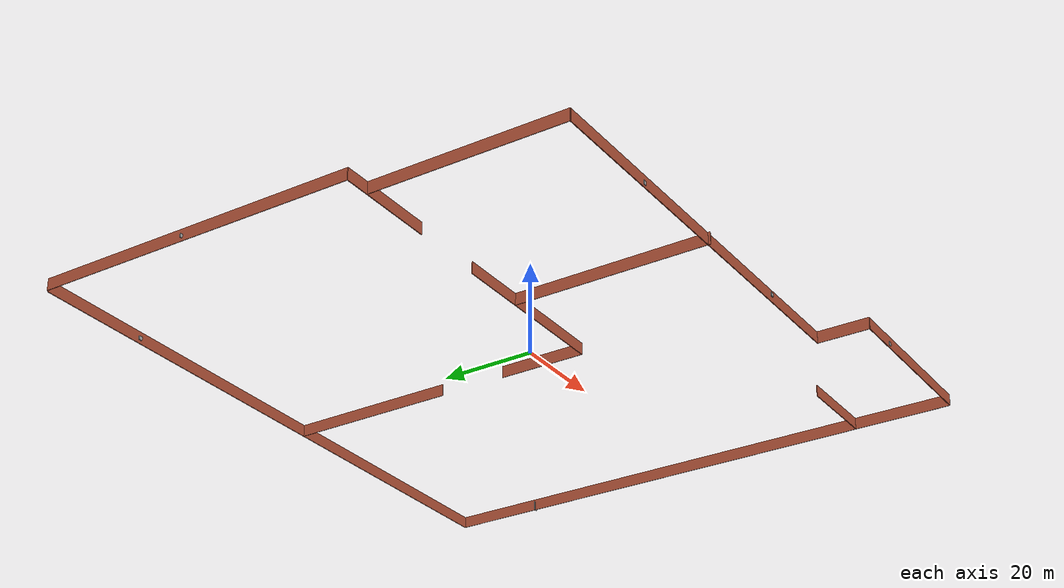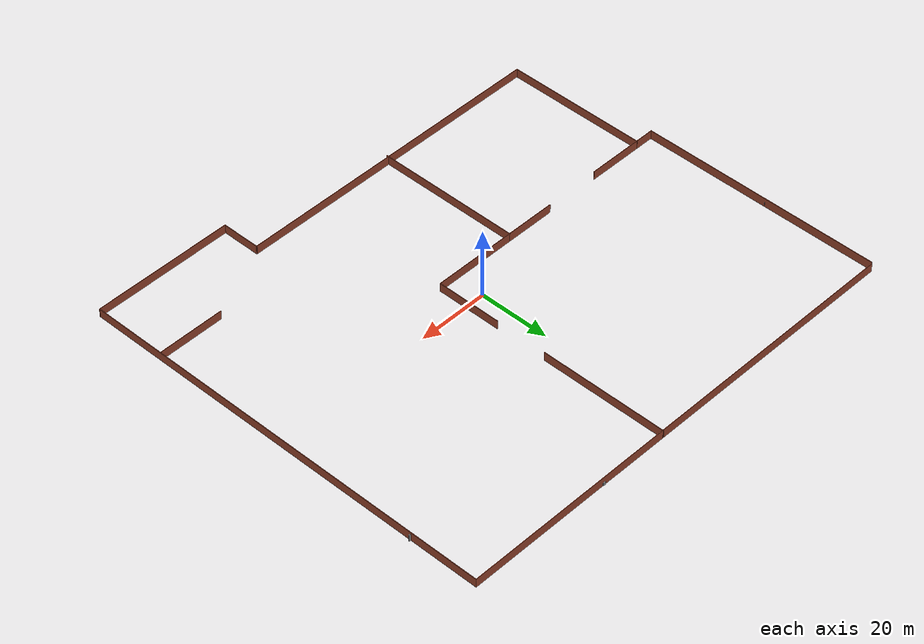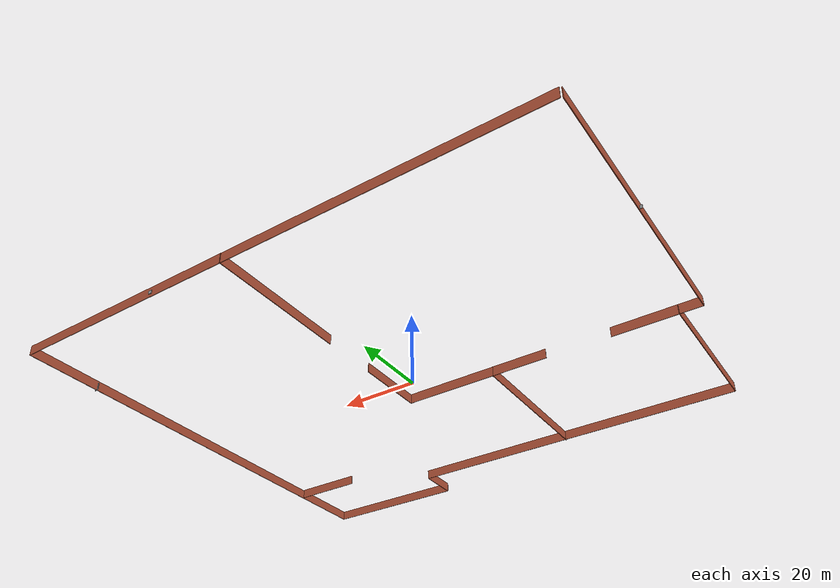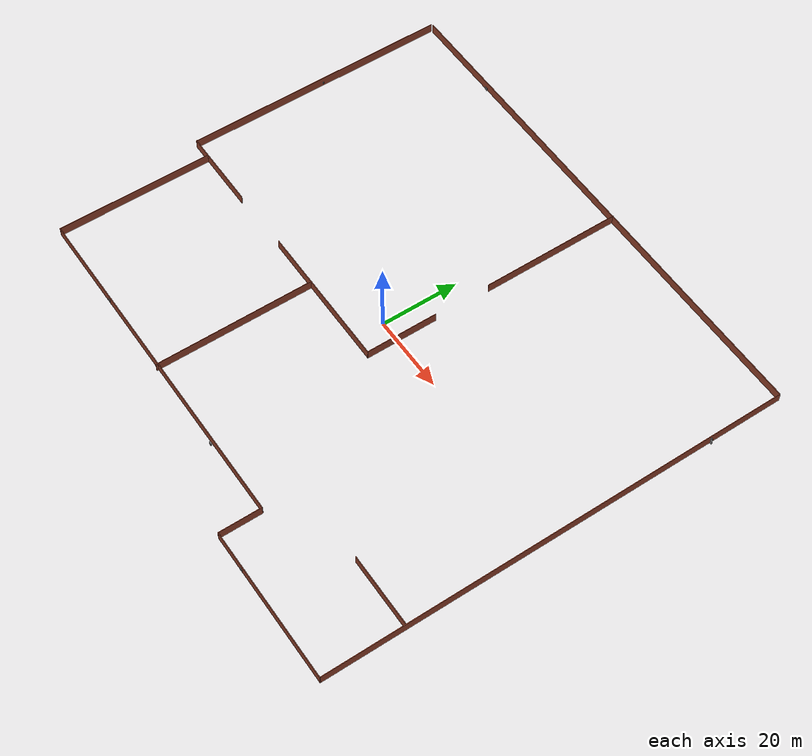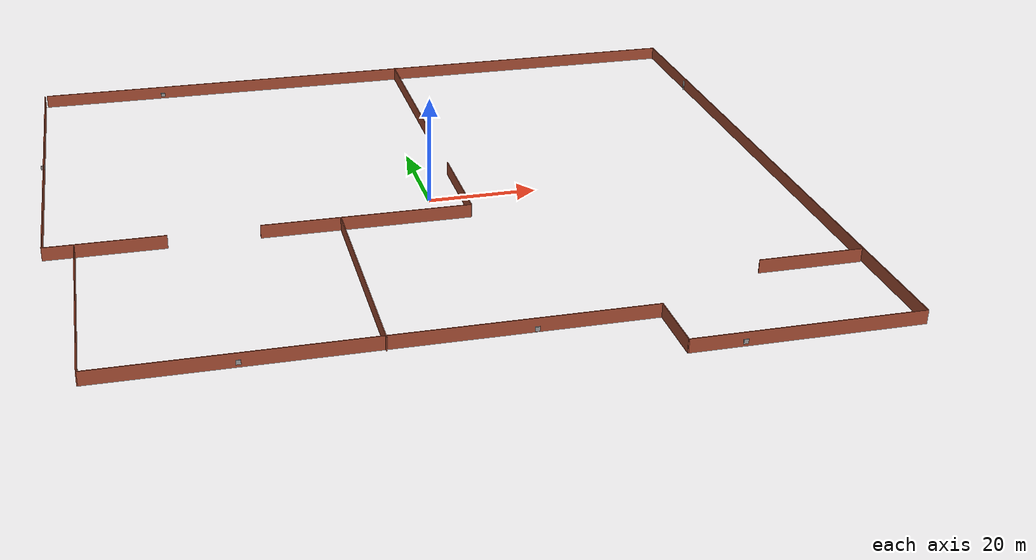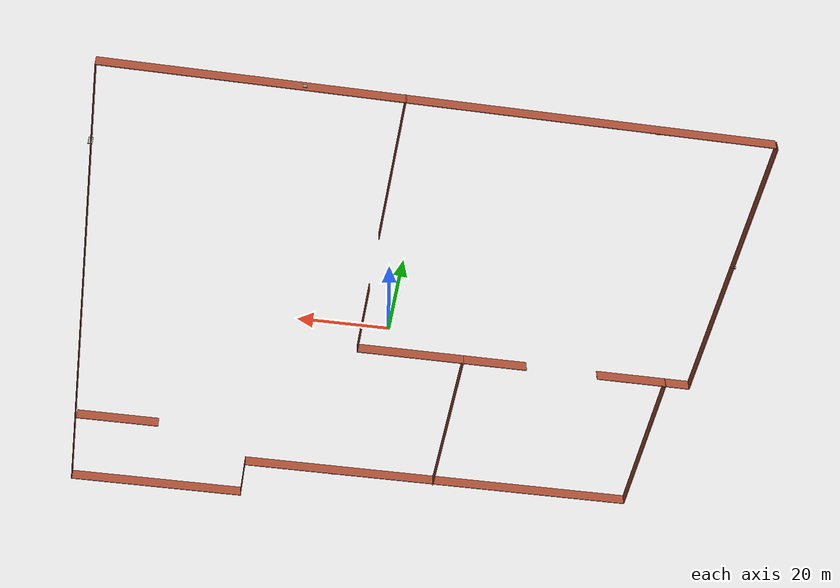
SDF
<?xml version='1.0'?>
<sdf version='1.6'>
  <model name='Untitled'>
    <pose frame=''>-1.43101 0.791929 0 0 -0 0</pose>
    <link name='Door_0'>
      <collision name='Door_0_Collision'>
        <geometry>
          <box>
            <size>0.9 0.17 2</size>
          </box>
        </geometry>
        <pose frame=''>0 0 1 0 -0 0</pose>
      </collision>
      <visual name='Door_0_Visual'>
        <pose frame=''>0 0 1 0 -0 0</pose>
        <geometry>
          <box>
            <size>0.9 0.17 2</size>
          </box>
        </geometry>
        <material>
          <script>
            <uri>file://media/materials/scripts/gazebo.material</uri>
            <name>Gazebo/Grey</name>
          </script>
        </material>
      </visual>
      <pose frame=''>67.6461 40.5561 0 0 -0 0</pose>
    </link>
    <link name='Wall_10'>
      <collision name='Wall_10_Collision'>
        <geometry>
          <box>
            <size>11 0.15 2.5</size>
          </box>
        </geometry>
        <pose frame=''>0 0 1.25 0 -0 0</pose>
      </collision>
      <visual name='Wall_10_Visual'>
        <pose frame=''>0 0 1.25 0 -0 0</pose>
        <geometry>
          <box>
            <size>11 0.15 2.5</size>
          </box>
        </geometry>
        <material>
          <script>
            <uri>file://media/materials/scripts/gazebo.material</uri>
            <name>Gazebo/Bricks</name>
          </script>
          <ambient>1 1 1 1</ambient>
        </material>
      </visual>
      <pose frame=''>27.925 -54.6711 0 0 -0 1.5708</pose>
    </link>
    <link name='Wall_11'>
      <collision name='Wall_11_Collision'>
        <geometry>
          <box>
            <size>90.25 0.15 2.5</size>
          </box>
        </geometry>
        <pose frame=''>0 0 1.25 0 -0 0</pose>
      </collision>
      <visual name='Wall_11_Visual'>
        <pose frame=''>0 0 1.25 0 -0 0</pose>
        <geometry>
          <box>
            <size>90.25 0.15 2.5</size>
          </box>
        </geometry>
        <material>
          <script>
            <uri>file://media/materials/scripts/gazebo.material</uri>
            <name>Gazebo/Bricks</name>
          </script>
          <ambient>1 1 1 1</ambient>
        </material>
      </visual>
      <pose frame=''>-17.125 -49.2461 0 0 -0 3.14159</pose>
    </link>
    <link name='Wall_12'>
      <collision name='Wall_12_Collision'>
        <geometry>
          <box>
            <size>40.25 0.15 2.5</size>
          </box>
        </geometry>
        <pose frame=''>0 0 1.25 0 -0 0</pose>
      </collision>
      <visual name='Wall_12_Visual'>
        <pose frame=''>0 0 1.25 0 -0 0</pose>
        <geometry>
          <box>
            <size>40.25 0.15 2.5</size>
          </box>
        </geometry>
        <material>
          <script>
            <uri>file://media/materials/scripts/gazebo.material</uri>
            <name>Gazebo/Bricks</name>
          </script>
          <ambient>1 1 1 1</ambient>
        </material>
      </visual>
      <pose frame=''>-62.175 -29.1961 0 0 -0 1.5708</pose>
    </link>
    <link name='Wall_13'>
      <collision name='Wall_13_Collision'>
        <geometry>
          <box>
            <size>5.5 0.15 2.5</size>
          </box>
        </geometry>
        <pose frame=''>0 0 1.25 0 -0 0</pose>
      </collision>
      <visual name='Wall_13_Visual'>
        <pose frame=''>0 0 1.25 0 -0 0</pose>
        <geometry>
          <box>
            <size>5.5 0.15 2.5</size>
          </box>
        </geometry>
        <material>
          <script>
            <uri>file://media/materials/scripts/gazebo.material</uri>
            <name>Gazebo/Bricks</name>
          </script>
          <ambient>1 1 1 1</ambient>
        </material>
      </visual>
      <pose frame=''>-64.85 -9.14614 0 0 -0 3.14159</pose>
    </link>
    <link name='Wall_14'>
      <collision name='Wall_14_Collision'>
        <geometry>
          <box>
            <size>69 0.15 2.5</size>
          </box>
        </geometry>
        <pose frame=''>0 0 1.25 0 -0 0</pose>
      </collision>
      <visual name='Wall_14_Visual'>
        <pose frame=''>0 0 1.25 0 -0 0</pose>
        <geometry>
          <box>
            <size>69 0.15 2.5</size>
          </box>
        </geometry>
        <material>
          <script>
            <uri>file://media/materials/scripts/gazebo.material</uri>
            <name>Gazebo/Bricks</name>
          </script>
          <ambient>1 1 1 1</ambient>
        </material>
      </visual>
      <pose frame=''>-67.525 25.2789 0 0 -0 1.5708</pose>
    </link>
    <link name='Wall_16'>
      <collision name='Wall_16_Collision'>
        <geometry>
          <box>
            <size>15.75 0.15 2.5</size>
          </box>
        </geometry>
        <pose frame=''>0 0 1.25 0 -0 0</pose>
      </collision>
      <visual name='Wall_16_Visual'>
        <pose frame=''>0 0 1.25 0 -0 0</pose>
        <geometry>
          <box>
            <size>15.75 0.15 2.5</size>
          </box>
        </geometry>
        <material>
          <script>
            <uri>file://media/materials/scripts/gazebo.material</uri>
            <name>Gazebo/Bricks</name>
          </script>
          <ambient>1 1 1 1</ambient>
        </material>
      </visual>
      <pose frame=''>-54.375 -9.14614 0 0 -0 0</pose>
    </link>
    <link name='Wall_18'>
      <collision name='Wall_18_Collision'>
        <geometry>
          <box>
            <size>41 0.15 2.5</size>
          </box>
        </geometry>
        <pose frame=''>0 0 1.25 0 -0 0</pose>
      </collision>
      <visual name='Wall_18_Visual'>
        <pose frame=''>0 0 1.25 0 -0 0</pose>
        <geometry>
          <box>
            <size>41 0.15 2.5</size>
          </box>
        </geometry>
        <material>
          <script>
            <uri>file://media/materials/scripts/gazebo.material</uri>
            <name>Gazebo/Bricks</name>
          </script>
          <ambient>1 1 1 1</ambient>
        </material>
      </visual>
      <pose frame=''>-16.3437 -29.2867 0 0 -0 1.5708</pose>
    </link>
    <link name='Wall_19'>
      <collision name='Wall_19_Collision'>
        <geometry>
          <box>
            <size>23.75 0.15 2.5</size>
          </box>
        </geometry>
        <pose frame=''>0 0 1.25 0 -0 0</pose>
      </collision>
      <visual name='Wall_19_Visual'>
        <pose frame=''>0 0 1.25 0 -0 0</pose>
        <geometry>
          <box>
            <size>23.75 0.15 2.5</size>
          </box>
        </geometry>
        <material>
          <script>
            <uri>file://media/materials/scripts/gazebo.material</uri>
            <name>Gazebo/Bricks</name>
          </script>
          <ambient>1 1 1 1</ambient>
        </material>
      </visual>
      <pose frame=''>-4.54371 -8.86166 0 0 -0 0</pose>
    </link>
    <link name='Wall_20'>
      <collision name='Wall_20_Collision'>
        <geometry>
          <box>
            <size>18.5 0.15 2.5</size>
          </box>
        </geometry>
        <pose frame=''>0 0 1.25 0 -0 0</pose>
      </collision>
      <visual name='Wall_20_Visual'>
        <pose frame=''>0 0 1.25 0 -0 0</pose>
        <geometry>
          <box>
            <size>18.5 0.15 2.5</size>
          </box>
        </geometry>
        <material>
          <script>
            <uri>file://media/materials/scripts/gazebo.material</uri>
            <name>Gazebo/Bricks</name>
          </script>
          <ambient>1 1 1 1</ambient>
        </material>
      </visual>
      <pose frame=''>7.25629 0.313338 0 0 -0 1.5708</pose>
    </link>
    <link name='Wall_22'>
      <collision name='Wall_22_Collision'>
        <geometry>
          <box>
            <size>14.25 0.15 2.5</size>
          </box>
        </geometry>
        <pose frame=''>0 0 1.25 0 -0 0</pose>
      </collision>
      <visual name='Wall_22_Visual'>
        <pose frame=''>0 0 1.25 0 -0 0</pose>
        <geometry>
          <box>
            <size>14.25 0.15 2.5</size>
          </box>
        </geometry>
        <material>
          <script>
            <uri>file://media/materials/scripts/gazebo.material</uri>
            <name>Gazebo/Bricks</name>
          </script>
          <ambient>1 1 1 1</ambient>
        </material>
      </visual>
      <pose frame=''>-23.3937 -8.86166 0 0 -0 3.14159</pose>
    </link>
    <link name='Wall_25'>
      <collision name='Wall_25_Collision'>
        <geometry>
          <box>
            <size>18.5 0.15 2.5</size>
          </box>
        </geometry>
        <pose frame=''>0 0 1.25 0 -0 0</pose>
      </collision>
      <visual name='Wall_25_Visual'>
        <pose frame=''>0 0 1.25 0 -0 0</pose>
        <geometry>
          <box>
            <size>18.5 0.15 2.5</size>
          </box>
        </geometry>
        <material>
          <script>
            <uri>file://media/materials/scripts/gazebo.material</uri>
            <name>Gazebo/Bricks</name>
          </script>
          <ambient>1 1 1 1</ambient>
        </material>
      </visual>
      <pose frame=''>57.9816 -39.2741 0 0 -0 3.14159</pose>
    </link>
    <link name='Wall_28'>
      <collision name='Wall_28_Collision'>
        <geometry>
          <box>
            <size>36 0.15 2.5</size>
          </box>
        </geometry>
        <pose frame=''>0 0 1.25 0 -0 0</pose>
      </collision>
      <visual name='Wall_28_Visual'>
        <pose frame=''>0 0 1.25 0 -0 0</pose>
        <geometry>
          <box>
            <size>36 0.15 2.5</size>
          </box>
        </geometry>
        <material>
          <script>
            <uri>file://media/materials/scripts/gazebo.material</uri>
            <name>Gazebo/Bricks</name>
          </script>
          <ambient>1 1 1 1</ambient>
        </material>
      </visual>
      <pose frame=''>7.35107 42.1711 0 0 0 -1.5708</pose>
    </link>
    <link name='Wall_7'>
      <collision name='Wall_7_Collision'>
        <geometry>
          <box>
            <size>134.75 0.15 2.5</size>
          </box>
        </geometry>
        <pose frame=''>0 0 1.25 0 -0 0</pose>
      </collision>
      <visual name='Wall_7_Visual'>
        <pose frame=''>0 0 1.25 0 -0 0</pose>
        <geometry>
          <box>
            <size>134.75 0.15 2.5</size>
          </box>
        </geometry>
        <material>
          <script>
            <uri>file://media/materials/scripts/gazebo.material</uri>
            <name>Gazebo/Bricks</name>
          </script>
          <ambient>1 1 1 1</ambient>
        </material>
      </visual>
      <pose frame=''>0.224998 60.0039 0 0 -0 0</pose>
    </link>
    <link name='Wall_8'>
      <collision name='Wall_8_Collision'>
        <geometry>
          <box>
            <size>120.25 0.15 2.5</size>
          </box>
        </geometry>
        <pose frame=''>0 0 1.25 0 -0 0</pose>
      </collision>
      <visual name='Wall_8_Visual'>
        <pose frame=''>0 0 1.25 0 -0 0</pose>
        <geometry>
          <box>
            <size>120.25 0.15 2.5</size>
          </box>
        </geometry>
        <material>
          <script>
            <uri>file://media/materials/scripts/gazebo.material</uri>
            <name>Gazebo/Bricks</name>
          </script>
          <ambient>1 1 1 1</ambient>
        </material>
      </visual>
      <pose frame=''>67.525 -0.046136 0 0 0 -1.5708</pose>
    </link>
    <link name='Wall_9'>
      <collision name='Wall_9_Collision'>
        <geometry>
          <box>
            <size>39.75 0.15 2.5</size>
          </box>
        </geometry>
        <pose frame=''>0 0 1.25 0 -0 0</pose>
      </collision>
      <visual name='Wall_9_Visual'>
        <pose frame=''>0 0 1.25 0 -0 0</pose>
        <geometry>
          <box>
            <size>39.75 0.15 2.5</size>
          </box>
        </geometry>
        <material>
          <script>
            <uri>file://media/materials/scripts/gazebo.material</uri>
            <name>Gazebo/Bricks</name>
          </script>
          <ambient>1 1 1 1</ambient>
        </material>
      </visual>
      <pose frame=''>47.725 -60.0961 0 0 -0 3.14159</pose>
    </link>
    <link name='Window_0'>
      <collision name='Window_0_Collision'>
        <geometry>
          <box>
            <size>0.8 0.17 0.8</size>
          </box>
        </geometry>
        <pose frame=''>0 0 0.4 0 -0 0</pose>
      </collision>
      <visual name='Window_0_Visual'>
        <pose frame=''>0 0 0.4 0 -0 0</pose>
        <geometry>
          <box>
            <size>0.8 0.17 0.8</size>
          </box>
        </geometry>
        <material>
          <script>
            <uri>file://media/materials/scripts/gazebo.material</uri>
            <name>Gazebo/Grey</name>
          </script>
        </material>
      </visual>
      <pose frame=''>27.1703 60.3753 0.5 0 -0 0</pose>
    </link>
    <link name='Window_1'>
      <collision name='Window_1_Collision'>
        <geometry>
          <box>
            <size>0.8 0.17 0.8</size>
          </box>
        </geometry>
        <pose frame=''>0 0 0.4 0 -0 0</pose>
      </collision>
      <visual name='Window_1_Visual'>
        <pose frame=''>0 0 0.4 0 -0 0</pose>
        <geometry>
          <box>
            <size>0.8 0.17 0.8</size>
          </box>
        </geometry>
        <material>
          <script>
            <uri>file://media/materials/scripts/gazebo.material</uri>
            <name>Gazebo/Grey</name>
          </script>
        </material>
      </visual>
      <pose frame=''>37.2194 -60.2147 0.5 0 -0 0</pose>
    </link>
    <link name='Window_2'>
      <collision name='Window_2_Collision'>
        <geometry>
          <box>
            <size>0.8 0.17 0.8</size>
          </box>
        </geometry>
        <pose frame=''>0 0 0.4 0 -0 0</pose>
      </collision>
      <visual name='Window_2_Visual'>
        <pose frame=''>0 0 0.4 0 -0 0</pose>
        <geometry>
          <box>
            <size>0.8 0.17 0.8</size>
          </box>
        </geometry>
        <material>
          <script>
            <uri>file://media/materials/scripts/gazebo.material</uri>
            <name>Gazebo/Grey</name>
          </script>
        </material>
      </visual>
      <pose frame=''>7.35107 -49.8864 0.5 0 -0 0</pose>
    </link>
    <link name='Window_3'>
      <collision name='Window_3_Collision'>
        <geometry>
          <box>
            <size>0.8 0.17 0.8</size>
          </box>
        </geometry>
        <pose frame=''>0 0 0.4 0 -0 0</pose>
      </collision>
      <visual name='Window_3_Visual'>
        <pose frame=''>0 0 0.4 0 -0 0</pose>
        <geometry>
          <box>
            <size>0.8 0.17 0.8</size>
          </box>
        </geometry>
        <material>
          <script>
            <uri>file://media/materials/scripts/gazebo.material</uri>
            <name>Gazebo/Grey</name>
          </script>
        </material>
      </visual>
      <pose frame=''>-38.7076 -49.3281 0.5 0 -0 0</pose>
    </link>
    <link name='Window_4'>
      <collision name='Window_4_Collision'>
        <geometry>
          <box>
            <size>0.8 0.17 0.8</size>
          </box>
        </geometry>
        <pose frame=''>0 0 0.4 0 -0 0</pose>
      </collision>
      <visual name='Window_4_Visual'>
        <pose frame=''>0 0 0.4 0 -0 0</pose>
        <geometry>
          <box>
            <size>0.8 0.17 0.8</size>
          </box>
        </geometry>
        <material>
          <script>
            <uri>file://media/materials/scripts/gazebo.material</uri>
            <name>Gazebo/Grey</name>
          </script>
        </material>
      </visual>
      <pose frame=''>-67.7385 27.1572 0.5 0 -0 0</pose>
    </link>
    <link name='Window_5'>
      <collision name='Window_5_Collision'>
        <geometry>
          <box>
            <size>0.8 0.17 0.8</size>
          </box>
        </geometry>
        <pose frame=''>0 0 0.4 0 -0 0</pose>
      </collision>
      <visual name='Window_5_Visual'>
        <pose frame=''>0 0 0.4 0 -0 0</pose>
        <geometry>
          <box>
            <size>0.8 0.17 0.8</size>
          </box>
        </geometry>
        <material>
          <script>
            <uri>file://media/materials/scripts/gazebo.material</uri>
            <name>Gazebo/Grey</name>
          </script>
        </material>
      </visual>
      <pose frame=''>-43.1739 59.5379 0.5 0 -0 0</pose>
    </link>
    <static>1</static>
  </model>
</sdf>
